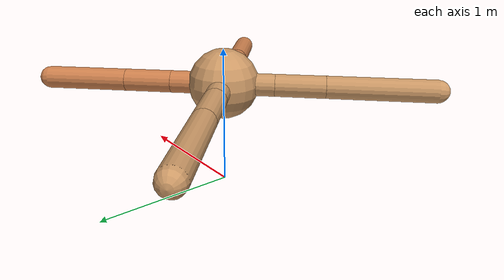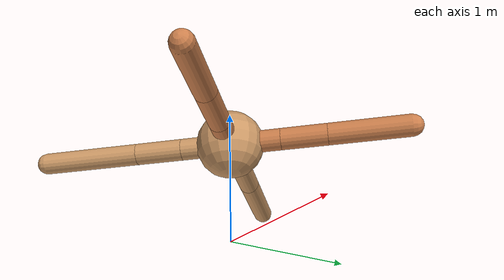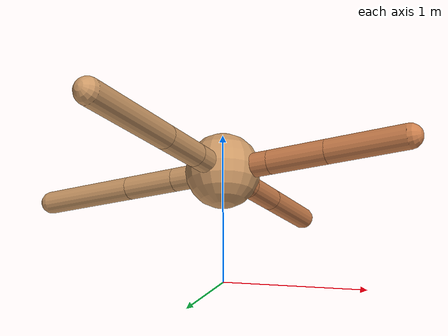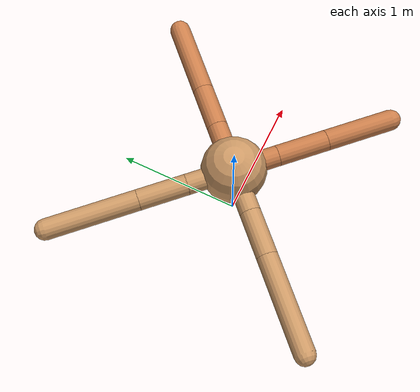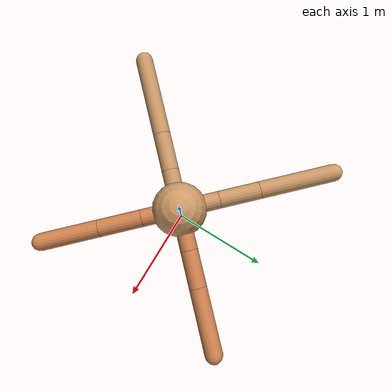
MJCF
<mujoco model="ant">
  <compiler angle="degree" coordinate="local" inertiafromgeom="true" />
  <option integrator="RK4" timestep="0.01" />
  <custom>
    <numeric data="0.0 0.0 0.55 1.0 0.0 0.0 0.0 0.0 1.0 0.0 -1.0 0.0 -1.0 0.0 1.0" name="init_qpos" />
  </custom>
  <default>
    <joint armature="1" damping="1" limited="true" />
    <geom conaffinity="0" condim="3" density="5.0" friction="1.5 0.1 0.1" margin="0.01" rgba="0.8 0.6 0.4 1" />
  </default>
  <worldbody>
    <body name="torso" pos="0 0 0.75">
      <geom name="torso_geom" pos="0 0 0" size="0.25" type="sphere" />

      <body name="front_left_leg" pos="0 0 0">
        <geom fromto="0.0 0.0 0.0 0.26694996873856386 0.26694996873856386 0.0" name="aux_1_geom" size="0.08" type="capsule" rgba=".8 .5 .3 1" />
        <body name="aux_1" pos="0.26694996873856386 0.26694996873856386 0.0">
          <joint axis="0 0 1" name="hip_1" pos="0.0 0.0 0.0" range="-40 40" type="hinge" />
          <geom fromto="0.0 0.0 0.0 0.2370312829112566 0.2370312829112566 0.0" name="left_leg_geom" size="0.08" type="capsule" rgba=".8 .5 .3 1" />
          <body pos="0.2370312829112566 0.2370312829112566 0.0" name="front_left_foot">
            <joint axis="-1 1 0" name="ankle_1" pos="0.0 0.0 0.0" range="30 100" type="hinge" />
            <geom fromto="0.0 0.0 0.0 0.4102708787631915 0.4102708787631915 0.0" name="left_ankle_geom" size="0.08" type="capsule" rgba=".8 .5 .3 1" />
          </body>
        </body>
      </body>
      <body name="front_right_leg" pos="0 0 0">
        <geom fromto="0.0 0.0 0.0 -0.26042445382628354 0.26042445382628354 0.0" name="aux_2_geom" size="0.08" type="capsule" />
        <body name="aux_2" pos="-0.26042445382628354 0.26042445382628354 0.0">
          <joint axis="0 0 1" name="hip_2" pos="0.0 0.0 0.0" range="-40 40" type="hinge" />
          <geom fromto="0.0 0.0 0.0 -0.26555232913162025 0.26555232913162025 0.0" name="right_leg_geom" size="0.08" type="capsule" />
          <body pos="-0.26555232913162025 0.26555232913162025 0.0" name="front_right_foot">
            <joint axis="1 1 0" name="ankle_2" pos="0.0 0.0 0.0" range="-100 -30" type="hinge" />
            <geom fromto="0.0 0.0 0.0 -0.49488087030425876 0.49488087030425876 0.0" name="right_ankle_geom" size="0.08" type="capsule" />
          </body>
        </body>
      </body>
      <body name="left_back_leg" pos="0 0 0">
        <geom fromto="0.0 0.0 0.0 -0.2570141411731118 -0.2570141411731118 0.0" name="aux_3_geom" size="0.08" type="capsule" />
        <body name="aux_3" pos="-0.2570141411731118 -0.2570141411731118 0.0">
          <joint axis="0 0 1" name="hip_3" pos="0.0 0.0 0.0" range="-40 40" type="hinge" />
          <geom fromto="0.0 0.0 0.0 -0.24849109601198155 -0.24849109601198155 0.0" name="back_leg_geom" size="0.08" type="capsule" />
          <body pos="-0.24849109601198155 -0.24849109601198155 0.0" name="left_back_foot">
            <joint axis="-1 1 0" name="ankle_3" pos="0.0 0.0 0.0" range="-100 -30" type="hinge" />
            <geom fromto="0.0 0.0 0.0 -0.5240625806751464 -0.5240625806751464 0.0" name="third_ankle_geom" size="0.08" type="capsule" />
          </body>
        </body>
      </body>
      <body name="right_back_leg" pos="0 0 0">
        <geom fromto="0.0 0.0 0.0 0.24568971999547282 -0.24568971999547282 0.0" name="aux_4_geom" size="0.08" type="capsule" rgba=".8 .5 .3 1" />
        <body name="aux_4" pos="0.24568971999547282 -0.24568971999547282 0.0">
          <joint axis="0 0 1" name="hip_4" pos="0.0 0.0 0.0" range="-40 40" type="hinge" />
          <geom fromto="0.0 0.0 0.0 0.27793518789848276 -0.27793518789848276 0.0" name="rightback_leg_geom" size="0.08" type="capsule" rgba=".8 .5 .3 1" />
          <body pos="0.27793518789848276 -0.27793518789848276 0.0" name="right_back_foot">
            <joint axis="1 1 0" name="ankle_4" pos="0.0 0.0 0.0" range="30 100" type="hinge" />
            <geom fromto="0.0 0.0 0.0 0.3725656251831153 -0.3725656251831153 0.0" name="fourth_ankle_geom" size="0.08" type="capsule" rgba=".8 .5 .3 1" />
          </body>
        </body>
      </body>
    </body>
  </worldbody>
  <actuator>
    <motor ctrllimited="true" ctrlrange="-1.0 1.0" joint="hip_4" gear="150" />
    <motor ctrllimited="true" ctrlrange="-1.0 1.0" joint="ankle_4" gear="150" />
    <motor ctrllimited="true" ctrlrange="-1.0 1.0" joint="hip_1" gear="150" />
    <motor ctrllimited="true" ctrlrange="-1.0 1.0" joint="ankle_1" gear="150" />
    <motor ctrllimited="true" ctrlrange="-1.0 1.0" joint="hip_2" gear="150" />
    <motor ctrllimited="true" ctrlrange="-1.0 1.0" joint="ankle_2" gear="150" />
    <motor ctrllimited="true" ctrlrange="-1.0 1.0" joint="hip_3" gear="150" />
    <motor ctrllimited="true" ctrlrange="-1.0 1.0" joint="ankle_3" gear="150" />
  </actuator>
</mujoco>
